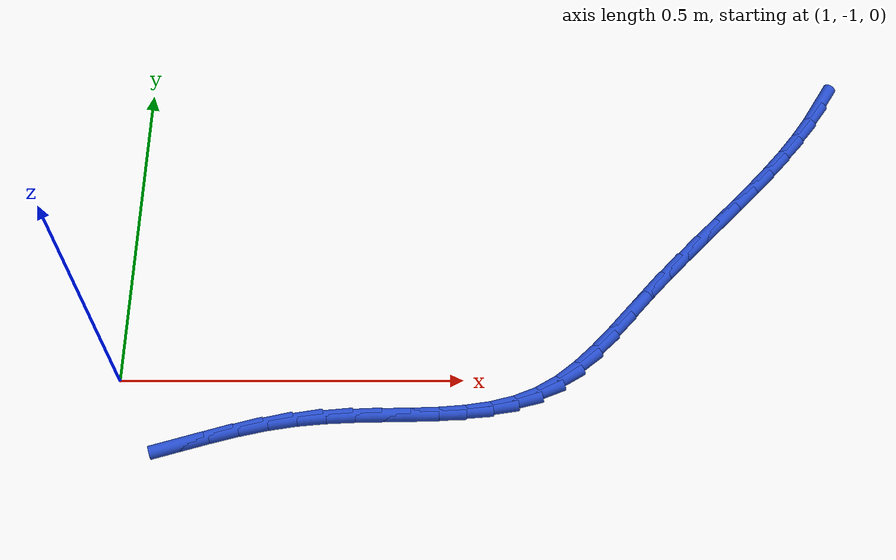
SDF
<sdf version="1.6">
 <world name="default">
  <model name="ground_plane">
   <static>1</static>
   <link name="link">
    <collision name="collision">
     <geometry><plane><normal>0 0 1</normal><size>100 100</size></plane></geometry>
     <surface><friction><ode><mu>100</mu><mu2>50</mu2></ode></friction></surface>
    </collision>
    <visual name="visual">
     <cast_shadows>0</cast_shadows>
     <geometry><plane><normal>0 0 1</normal><size>100 100</size></plane></geometry>
     <material>
      <script><uri>file://media/materials/scripts/gazebo.material</uri><name>Gazebo/WhiteGlow</name></script>
     </material>
    </visual>
   </link>
  </model>
  <model name="line">
   <link name="link_105">
    <pose>2.0614879309932546 -0.5265341367690201 0.01 0 1.57 1.0285373633883967</pose>
    <collision name="collision">
     <geometry><cylinder><radius>0.01</radius><length>0.08</length></cylinder></geometry>
    </collision>
    <visual name="visual">
     <material>
      <script><name>Gazebo/Blue</name><uri>file://media/materials/scripts/gazebo.material</uri></script>
     </material>
     <geometry><cylinder><radius>0.01</radius><length>0.08</length></cylinder></geometry>
    </visual>
   </link>
   <link name="link_106">
    <pose>2.042502967787935 -0.5580442171042787 0.01 0 1.57 0.9640698172538771</pose>
    <collision name="collision">
     <geometry><cylinder><radius>0.01</radius><length>0.08</length></cylinder></geometry>
    </collision>
    <visual name="visual">
     <material>
      <script><name>Gazebo/Blue</name><uri>file://media/materials/scripts/gazebo.material</uri></script>
     </material>
     <geometry><cylinder><radius>0.01</radius><length>0.08</length></cylinder></geometry>
    </visual>
   </link>
   <link name="link_107">
    <pose>2.0209863090829066 -0.5890454832255353 0.01 0 1.57 0.9122223657394706</pose>
    <collision name="collision">
     <geometry><cylinder><radius>0.01</radius><length>0.08</length></cylinder></geometry>
    </collision>
    <visual name="visual">
     <material>
      <script><name>Gazebo/Blue</name><uri>file://media/materials/scripts/gazebo.material</uri></script>
     </material>
     <geometry><cylinder><radius>0.01</radius><length>0.08</length></cylinder></geometry>
    </visual>
   </link>
   <link name="link_108">
    <pose>1.9973048912888263 -0.619648650792672 0.01 0 1.57 0.8718661657653584</pose>
    <collision name="collision">
     <geometry><cylinder><radius>0.01</radius><length>0.08</length></cylinder></geometry>
    </collision>
    <visual name="visual">
     <material>
      <script><name>Gazebo/Blue</name><uri>file://media/materials/scripts/gazebo.material</uri></script>
     </material>
     <geometry><cylinder><radius>0.01</radius><length>0.08</length></cylinder></geometry>
    </visual>
   </link>
   <link name="link_109">
    <pose>1.971825650816352 -0.6499644354655709 0.01 0 1.57 0.8419378995754225</pose>
    <collision name="collision">
     <geometry><cylinder><radius>0.01</radius><length>0.08</length></cylinder></geometry>
    </collision>
    <visual name="visual">
     <material>
      <script><name>Gazebo/Blue</name><uri>file://media/materials/scripts/gazebo.material</uri></script>
     </material>
     <geometry><cylinder><radius>0.01</radius><length>0.08</length></cylinder></geometry>
    </visual>
   </link>
   <link name="link_110">
    <pose>1.9449155240761427 -0.6801035529041126 0.01 0 1.57 0.821544152802356</pose>
    <collision name="collision">
     <geometry><cylinder><radius>0.01</radius><length>0.08</length></cylinder></geometry>
    </collision>
    <visual name="visual">
     <material>
      <script><name>Gazebo/Blue</name><uri>file://media/materials/scripts/gazebo.material</uri></script>
     </material>
     <geometry><cylinder><radius>0.01</radius><length>0.08</length></cylinder></geometry>
    </visual>
   </link>
   <link name="link_111">
    <pose>1.9169414474788553 -0.7101767187681797 0.01 0 1.57 0.8100039129261998</pose>
    <collision name="collision">
     <geometry><cylinder><radius>0.01</radius><length>0.08</length></cylinder></geometry>
    </collision>
    <visual name="visual">
     <material>
      <script><name>Gazebo/Blue</name><uri>file://media/materials/scripts/gazebo.material</uri></script>
     </material>
     <geometry><cylinder><radius>0.01</radius><length>0.08</length></cylinder></geometry>
    </visual>
   </link>
   <link name="link_112">
    <pose>1.8882703574351483 -0.7402946487176536 0.01 0 1.57 0.8068584145086409</pose>
    <collision name="collision">
     <geometry><cylinder><radius>0.01</radius><length>0.08</length></cylinder></geometry>
    </collision>
    <visual name="visual">
     <material>
      <script><name>Gazebo/Blue</name><uri>file://media/materials/scripts/gazebo.material</uri></script>
     </material>
     <geometry><cylinder><radius>0.01</radius><length>0.08</length></cylinder></geometry>
    </visual>
   </link>
   <link name="link_113">
    <pose>1.8592691903556797 -0.7705680584124166 0.01 0 1.57 0.8118658266565034</pose>
    <collision name="collision">
     <geometry><cylinder><radius>0.01</radius><length>0.08</length></cylinder></geometry>
    </collision>
    <visual name="visual">
     <material>
      <script><name>Gazebo/Blue</name><uri>file://media/materials/scripts/gazebo.material</uri></script>
     </material>
     <geometry><cylinder><radius>0.01</radius><length>0.08</length></cylinder></geometry>
    </visual>
   </link>
   <link name="link_114">
    <pose>1.8303048826511075 -0.8011076635123501 0.01 0 1.57 0.8249894678626974</pose>
    <collision name="collision">
     <geometry><cylinder><radius>0.01</radius><length>0.08</length></cylinder></geometry>
    </collision>
    <visual name="visual">
     <material>
      <script><name>Gazebo/Blue</name><uri>file://media/materials/scripts/gazebo.material</uri></script>
     </material>
     <geometry><cylinder><radius>0.01</radius><length>0.08</length></cylinder></geometry>
    </visual>
   </link>
   <link name="link_115">
    <pose>1.8017443707320882 -0.8320241796773362 0.01 0 1.57 0.8463665859428445</pose>
    <collision name="collision">
     <geometry><cylinder><radius>0.01</radius><length>0.08</length></cylinder></geometry>
    </collision>
    <visual name="visual">
     <material>
      <script><name>Gazebo/Blue</name><uri>file://media/materials/scripts/gazebo.material</uri></script>
     </material>
     <geometry><cylinder><radius>0.01</radius><length>0.08</length></cylinder></geometry>
    </visual>
   </link>
   <link name="link_116">
    <pose>1.7739541675792325 -0.8634278161918681 0.01 0 1.57 0.8677918518057504</pose>
    <collision name="collision">
     <geometry><cylinder><radius>0.01</radius><length>0.08</length></cylinder></geometry>
    </collision>
    <visual name="visual">
     <material>
      <script><name>Gazebo/Blue</name><uri>file://media/materials/scripts/gazebo.material</uri></script>
     </material>
     <geometry><cylinder><radius>0.01</radius><length>0.08</length></cylinder></geometry>
    </visual>
   </link>
   <link name="link_117">
    <pose>1.7470696222570872 -0.8951523359286337 0.01 0 1.57 0.8666198260897243</pose>
    <collision name="collision">
     <geometry><cylinder><radius>0.01</radius><length>0.08</length></cylinder></geometry>
    </collision>
    <visual name="visual">
     <material>
      <script><name>Gazebo/Blue</name><uri>file://media/materials/scripts/gazebo.material</uri></script>
     </material>
     <geometry><cylinder><radius>0.01</radius><length>0.08</length></cylinder></geometry>
    </visual>
   </link>
   <link name="link_118">
    <pose>1.720612785150769 -0.9262980645432082 0.01 0 1.57 0.8376942698588897</pose>
    <collision name="collision">
     <geometry><cylinder><radius>0.01</radius><length>0.08</length></cylinder></geometry>
    </collision>
    <visual name="visual">
     <material>
      <script><name>Gazebo/Blue</name><uri>file://media/materials/scripts/gazebo.material</uri></script>
     </material>
     <geometry><cylinder><radius>0.01</radius><length>0.08</length></cylinder></geometry>
    </visual>
   </link>
   <link name="link_119">
    <pose>1.6940051389765243 -0.9558450599102898 0.01 0 1.57 0.7778676629992893</pose>
    <collision name="collision">
     <geometry><cylinder><radius>0.01</radius><length>0.08</length></cylinder></geometry>
    </collision>
    <visual name="visual">
     <material>
      <script><name>Gazebo/Blue</name><uri>file://media/materials/scripts/gazebo.material</uri></script>
     </material>
     <geometry><cylinder><radius>0.01</radius><length>0.08</length></cylinder></geometry>
    </visual>
   </link>
   <link name="link_120">
    <pose>1.6666681664505962 -0.9827733799045769 0.01 0 1.57 0.6826484894582888</pose>
    <collision name="collision">
     <geometry><cylinder><radius>0.01</radius><length>0.08</length></cylinder></geometry>
    </collision>
    <visual name="visual">
     <material>
      <script><name>Gazebo/Blue</name><uri>file://media/materials/scripts/gazebo.material</uri></script>
     </material>
     <geometry><cylinder><radius>0.01</radius><length>0.08</length></cylinder></geometry>
    </visual>
   </link>
   <link name="link_121">
    <pose>1.638023350289233 -1.006063082400768 0.01 0 1.57 0.5479798778686922</pose>
    <collision name="collision">
     <geometry><cylinder><radius>0.01</radius><length>0.08</length></cylinder></geometry>
    </collision>
    <visual name="visual">
     <material>
      <script><name>Gazebo/Blue</name><uri>file://media/materials/scripts/gazebo.material</uri></script>
     </material>
     <geometry><cylinder><radius>0.01</radius><length>0.08</length></cylinder></geometry>
    </visual>
   </link>
   <link name="link_122">
    <pose>1.6074931709798537 -1.02469654126956 0.01 0 1.57 0.3908102233110749</pose>
    <collision name="collision">
     <geometry><cylinder><radius>0.01</radius><length>0.08</length></cylinder></geometry>
    </collision>
    <visual name="visual">
     <material>
      <script><name>Gazebo/Blue</name><uri>file://media/materials/scripts/gazebo.material</uri></script>
     </material>
     <geometry><cylinder><radius>0.01</radius><length>0.08</length></cylinder></geometry>
    </visual>
   </link>
   <link name="link_123">
    <pose>1.5747319385987744 -1.0381942461475355 0.01 0 1.57 0.2558839582325902</pose>
    <collision name="collision">
     <geometry><cylinder><radius>0.01</radius><length>0.08</length></cylinder></geometry>
    </collision>
    <visual name="visual">
     <material>
      <script><name>Gazebo/Blue</name><uri>file://media/materials/scripts/gazebo.material</uri></script>
     </material>
     <geometry><cylinder><radius>0.01</radius><length>0.08</length></cylinder></geometry>
    </visual>
   </link>
   <link name="link_124">
    <pose>1.539921550266223 -1.0473013056146958 0.01 0 1.57 0.15263669113629577</pose>
    <collision name="collision">
     <geometry><cylinder><radius>0.01</radius><length>0.08</length></cylinder></geometry>
    </collision>
    <visual name="visual">
     <material>
      <script><name>Gazebo/Blue</name><uri>file://media/materials/scripts/gazebo.material</uri></script>
     </material>
     <geometry><cylinder><radius>0.01</radius><length>0.08</length></cylinder></geometry>
    </visual>
   </link>
   <link name="link_125">
    <pose>1.5033169203309384 -1.052932313613243 0.01 0 1.57 0.08029974660247192</pose>
    <collision name="collision">
     <geometry><cylinder><radius>0.01</radius><length>0.08</length></cylinder></geometry>
    </collision>
    <visual name="visual">
     <material>
      <script><name>Gazebo/Blue</name><uri>file://media/materials/scripts/gazebo.material</uri></script>
     </material>
     <geometry><cylinder><radius>0.01</radius><length>0.08</length></cylinder></geometry>
    </visual>
   </link>
   <link name="link_126">
    <pose>1.4651729631416577 -1.0560018640853792 0.01 0 1.57 0.036067175347821195</pose>
    <collision name="collision">
     <geometry><cylinder><radius>0.01</radius><length>0.08</length></cylinder></geometry>
    </collision>
    <visual name="visual">
     <material>
      <script><name>Gazebo/Blue</name><uri>file://media/materials/scripts/gazebo.material</uri></script>
     </material>
     <geometry><cylinder><radius>0.01</radius><length>0.08</length></cylinder></geometry>
    </visual>
   </link>
   <link name="link_127">
    <pose>1.4257445930471218 -1.0574245509733065 0.01 0 1.57 0.017063435622042464</pose>
    <collision name="collision">
     <geometry><cylinder><radius>0.01</radius><length>0.08</length></cylinder></geometry>
    </collision>
    <visual name="visual">
     <material>
      <script><name>Gazebo/Blue</name><uri>file://media/materials/scripts/gazebo.material</uri></script>
     </material>
     <geometry><cylinder><radius>0.01</radius><length>0.08</length></cylinder></geometry>
    </visual>
   </link>
   <link name="link_128">
    <pose>1.3852867243960676 -1.0581149682192268 0.01 0 1.57 0.021163214573667176</pose>
    <collision name="collision">
     <geometry><cylinder><radius>0.01</radius><length>0.08</length></cylinder></geometry>
    </collision>
    <visual name="visual">
     <material>
      <script><name>Gazebo/Blue</name><uri>file://media/materials/scripts/gazebo.material</uri></script>
     </material>
     <geometry><cylinder><radius>0.01</radius><length>0.08</length></cylinder></geometry>
    </visual>
   </link>
   <link name="link_129">
    <pose>1.3440542715372341 -1.0589877097653424 0.01 0 1.57 0.04714013220770317</pose>
    <collision name="collision">
     <geometry><cylinder><radius>0.01</radius><length>0.08</length></cylinder></geometry>
    </collision>
    <visual name="visual">
     <material>
      <script><name>Gazebo/Blue</name><uri>file://media/materials/scripts/gazebo.material</uri></script>
     </material>
     <geometry><cylinder><radius>0.01</radius><length>0.08</length></cylinder></geometry>
    </visual>
   </link>
   <link name="link_130">
    <pose>1.3023021488193596 -1.060957369553855 0.01 0 1.57 0.094469692531322</pose>
    <collision name="collision">
     <geometry><cylinder><radius>0.01</radius><length>0.08</length></cylinder></geometry>
    </collision>
    <visual name="visual">
     <material>
      <script><name>Gazebo/Blue</name><uri>file://media/materials/scripts/gazebo.material</uri></script>
     </material>
     <geometry><cylinder><radius>0.01</radius><length>0.08</length></cylinder></geometry>
    </visual>
   </link>
   <link name="link_131">
    <pose>1.2602852705911816 -1.0649385415269674 0.01 0 1.57 0.16082325360498936</pose>
    <collision name="collision">
     <geometry><cylinder><radius>0.01</radius><length>0.08</length></cylinder></geometry>
    </collision>
    <visual name="visual">
     <material>
      <script><name>Gazebo/Blue</name><uri>file://media/materials/scripts/gazebo.material</uri></script>
     </material>
     <geometry><cylinder><radius>0.01</radius><length>0.08</length></cylinder></geometry>
    </visual>
   </link>
   <link name="link_132">
    <pose>1.2182544726117555 -1.0717569569220518 0.01 0 1.57 0.22187886749917216</pose>
    <collision name="collision">
     <geometry><cylinder><radius>0.01</radius><length>0.08</length></cylinder></geometry>
    </collision>
    <visual name="visual">
     <material>
      <script><name>Gazebo/Blue</name><uri>file://media/materials/scripts/gazebo.material</uri></script>
     </material>
     <geometry><cylinder><radius>0.01</radius><length>0.08</length></cylinder></geometry>
    </visual>
   </link>
   <link name="link_133">
    <pose>1.1764127566237066 -1.0811961582764755 0.01 0 1.57 0.26296991211320797</pose>
    <collision name="collision">
     <geometry><cylinder><radius>0.01</radius><length>0.08</length></cylinder></geometry>
    </collision>
    <visual name="visual">
     <material>
      <script><name>Gazebo/Blue</name><uri>file://media/materials/scripts/gazebo.material</uri></script>
     </material>
     <geometry><cylinder><radius>0.01</radius><length>0.08</length></cylinder></geometry>
    </visual>
   </link>
   <link name="link_134">
    <pose>1.1349320629062385 -1.0923629332028424 0.01 0 1.57 0.28483846710538835</pose>
    <collision name="collision">
     <geometry><cylinder><radius>0.01</radius><length>0.08</length></cylinder></geometry>
    </collision>
    <visual name="visual">
     <material>
      <script><name>Gazebo/Blue</name><uri>file://media/materials/scripts/gazebo.material</uri></script>
     </material>
     <geometry><cylinder><radius>0.01</radius><length>0.08</length></cylinder></geometry>
    </visual>
   </link>
   <link name="link_135">
    <pose>1.0939838049504738 -1.1043525918626715 0.01 0 1.57 0.28768040269090495</pose>
    <collision name="collision">
     <geometry><cylinder><radius>0.01</radius><length>0.08</length></cylinder></geometry>
    </collision>
    <visual name="visual">
     <material>
      <script><name>Gazebo/Blue</name><uri>file://media/materials/scripts/gazebo.material</uri></script>
     </material>
     <geometry><cylinder><radius>0.01</radius><length>0.08</length></cylinder></geometry>
    </visual>
   </link>
  </model>
 </world>
</sdf>
